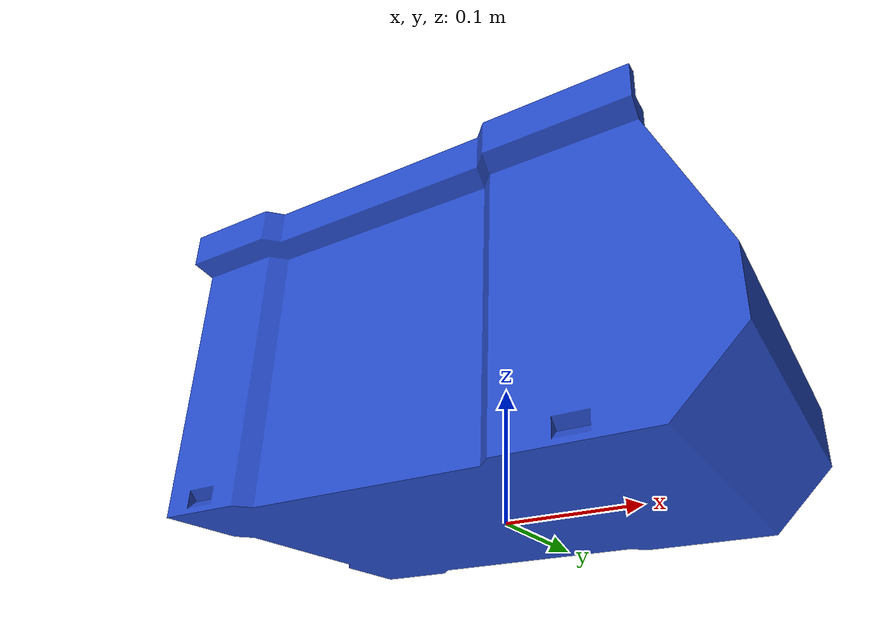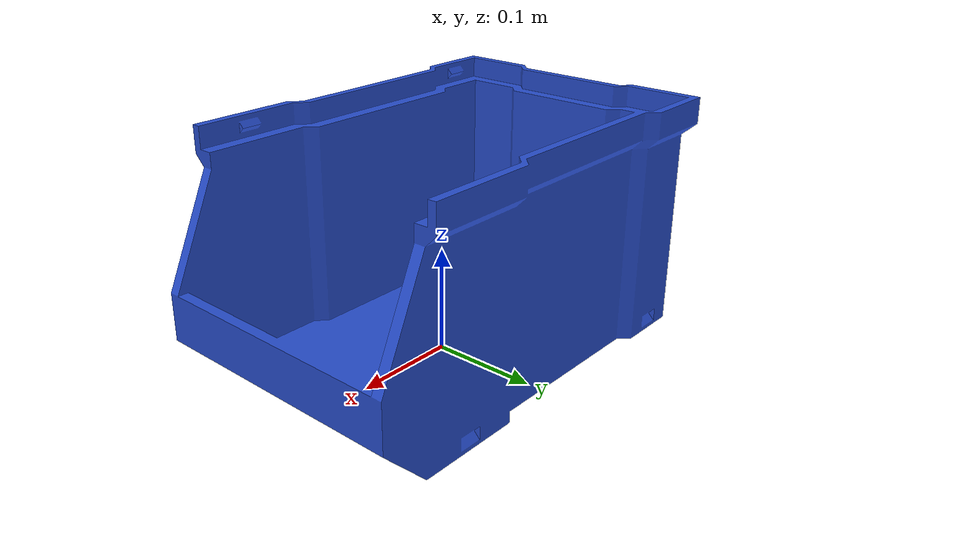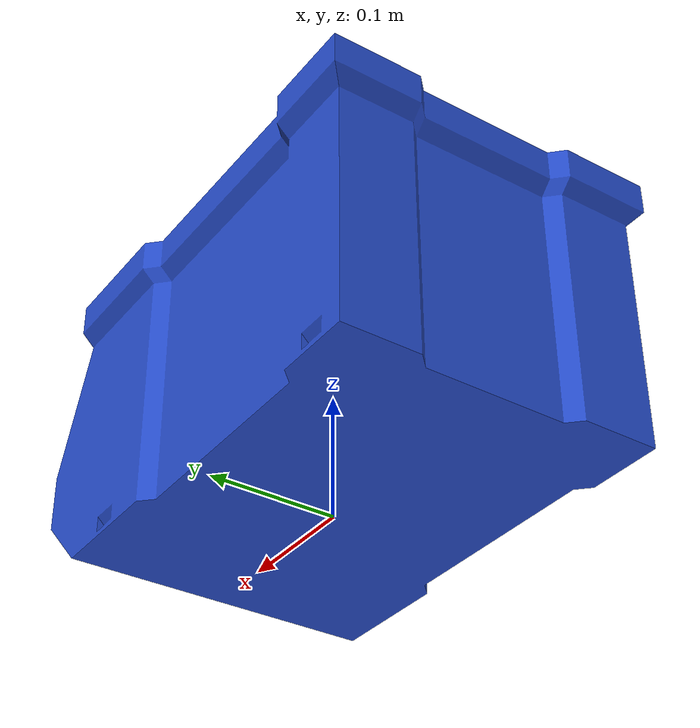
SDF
<?xml version="1.0" ?>
<sdf version="1.5">
	<model name="stacking_box">
		<static>1</static>
		<pose>0 0 0 0 0 0</pose>
		<link name="link">
			<inertial>
				<mass>0.5</mass>
			</inertial>
			<collision name="collision">
				<geometry>
					<mesh>
						<uri>model://stacking_box/meshes/stacking_box.stl</uri>
					</mesh>
				</geometry>
			</collision>
			<visual name="visual">
				<transparency>0</transparency>
				<geometry>
					<mesh>
						<uri>model://stacking_box/meshes/stacking_box.stl</uri>
					</mesh>
				</geometry>
				<material>
					<script>
						<name>SensorPlacementOptimization/DarkBlue</name>
						<uri>file://materials/sensor_placement_optimization.material</uri>
					</script>
				</material>
			</visual>
		</link>
	</model>
</sdf>
